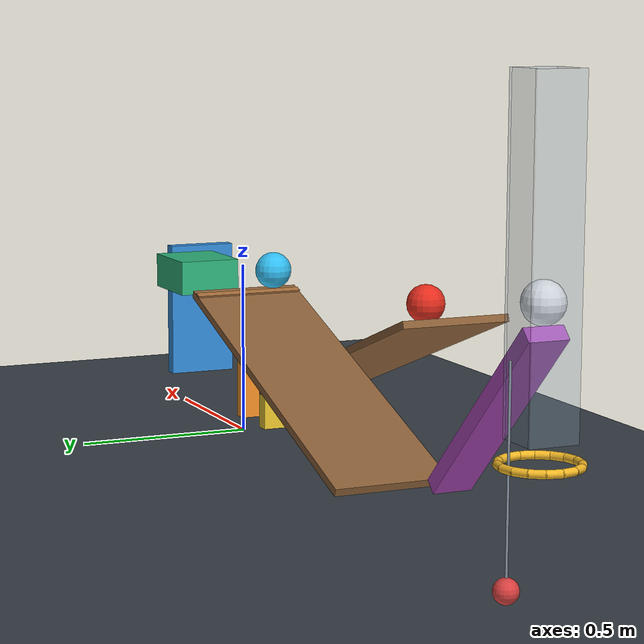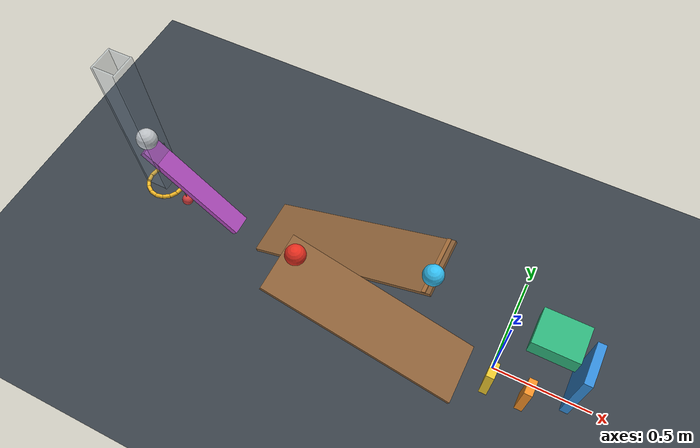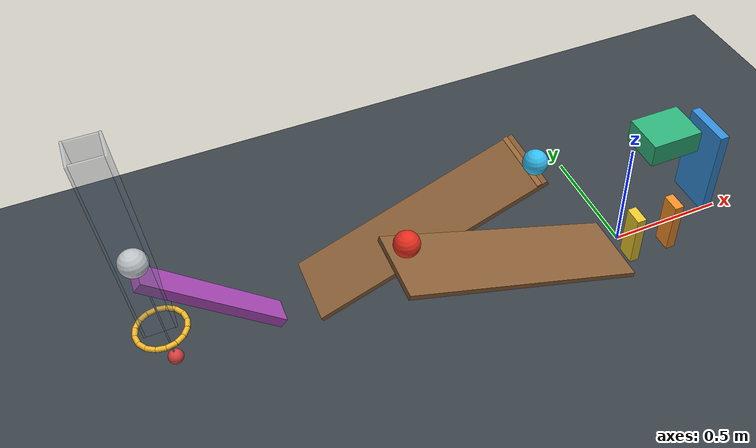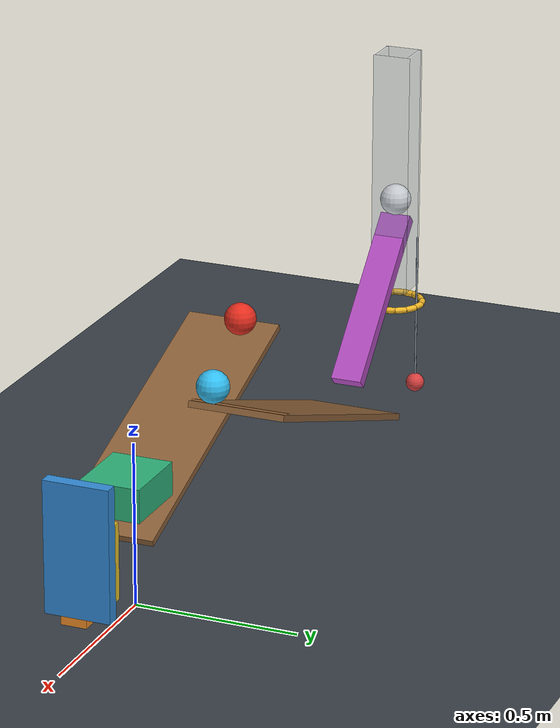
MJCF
<mujoco model="revised_passive_chain_reaction">
  <compiler angle="degree" autolimits="true" inertiafromgeom="true"/>
  <option timestep="0.002" gravity="0 0 -9.81" integrator="implicitfast" solver="Newton" iterations="100" tolerance="1e-10"/>
  <size njmax="3000" nconmax="500"/>

  <visual>
    <headlight ambient="0.45 0.45 0.45" diffuse="0.75 0.75 0.75" specular="0.15 0.15 0.15"/>
    <global azimuth="130" elevation="-20"/>
  </visual>

  <worldbody>
    <light name="overhead_light" pos="-0.8 -1.5 3" dir="0.1 0.3 -1" directional="true"/>
    <camera name="overview" pos="-3.4 -4.2 2.6" xyaxes="0.85 -0.53 0 0.24 0.38 0.89"/>
    <geom name="floor" type="plane" size="5 4 0.1" friction="0.70 0.005 0.004" condim="6" solref="0.008 0.6901" solimp="0.95 0.99 0.001" rgba="0.22 0.25 0.28 1"/>

    <!-- Ramp1's low top-surface edge is at x = -0.12, z = 0.15. -->
    <body name="ramp1" pos="-0.593266511 -0.15 0.311613145" quat="0.984807753 0 0.173648178 0">
      <geom name="ramp1_surface" type="box" size="0.50 0.15 0.01" friction="0.70 0.005 0.004" condim="6" solref="0.008 0.6901" solimp="0.95 0.99 0.001" rgba="0.55 0.38 0.22 1"/>
    </body>

    <body name="ball1" pos="-0.990908518 -0.10 0.520193766">
      <freejoint name="ball1_free"/>
      <geom name="ball1_sphere" type="sphere" size="0.05" mass="0.20" friction="0.70 0.005 0.004" condim="6" solref="0.008 0.6901" solimp="0.95 0.99 0.001" rgba="0.90 0.18 0.12 1"/>
    </body>

    <!-- Domino1's upstream face is 0.10 m beyond ramp1's exit. -->
    <body name="domino1" pos="0 -0.10 0.12">
      <freejoint name="domino1_free"/>
      <geom name="domino1_box" type="box" size="0.02 0.04 0.12" mass="0.25" friction="0.70 0.005 0.004" condim="3" solref="0.008 0.6901" solimp="0.95 0.99 0.001" rgba="0.92 0.78 0.18 1"/>
    </body>

    <body name="domino2" pos="0.18 -0.10 0.12">
      <freejoint name="domino2_free"/>
      <geom name="domino2_box" type="box" size="0.02 0.04 0.12" mass="0.25" friction="0.70 0.005 0.004" condim="3" solref="0.008 0.6901" solimp="0.95 0.99 0.001" rgba="0.95 0.56 0.15 1"/>
    </body>

    <!-- The panel initially spans z = 0.12 to 0.52.
         Domino2 strikes below the hinge, initiating the gravity-assisted swing.
         Its upper portion sweeps left into the elevated cart. -->
    <body name="flap1" pos="0.36 0 0.22">
      <joint name="flap1_hinge" type="hinge" axis="0 -1 0" range="0 65" damping="0.04" frictionloss="0" solreflimit="0.004 1" solimplimit="0.999 0.9999 0.0001"/>
      <geom name="flap1_panel" type="box" pos="0 0 0.10" size="0.02 0.10 0.20" mass="0.30" friction="0.70 0.005 0.004" condim="3" solref="0.008 0.6901" solimp="0.95 0.99 0.001" rgba="0.20 0.55 0.85 1"/>
    </body>

    <!-- Nominal first ball2 contact occurs after 0.45 m of travel.
         Another 0.015 m is available to push it over the retaining lip. -->
    <body name="cart1" pos="0.20 0.07 0.455">
      <joint name="cart1_slide" type="slide" axis="-1 0 0" range="0 0.465" damping="0.20" frictionloss="0" solreflimit="0.004 1" solimplimit="0.999 0.9999 0.0001"/>
      <geom name="cart1_box" type="box" size="0.11 0.09 0.05" mass="0.50" friction="0.70 0.005 0.004" condim="3" solref="0.008 0.6901" solimp="0.95 0.99 0.001" rgba="0.18 0.70 0.48 1"/>
    </body>

    <!-- Ramp2 descends toward negative x and ends at z = 0.15.
         The 5 mm lip provides a passive starting pocket for ball2. -->
    <body name="ramp2" pos="-0.845981101 0.15 0.311613145" quat="0.984807753 0 -0.173648178 0">
      <geom name="ramp2_surface" type="box" size="0.50 0.15 0.01" friction="0.70 0.005 0.004" condim="6" solref="0.008 0.6901" solimp="0.95 0.99 0.001" rgba="0.55 0.38 0.22 1"/>
      <geom name="ramp2_start_lip" type="box" pos="0.468205505 0 0.0125" size="0.01 0.15 0.0025" friction="0.70 0.005 0.004" condim="6" solref="0.008 0.6901" solimp="0.95 0.99 0.001" rgba="0.65 0.43 0.23 1"/>
    </body>

    <body name="ball2" pos="-0.396655000 0.07 0.539004774">
      <freejoint name="ball2_free"/>
      <geom name="ball2_sphere" type="sphere" size="0.05" mass="0.20" friction="0.70 0.005 0.004" condim="6" solref="0.008 0.6901" solimp="0.95 0.99 0.001" rgba="0.20 0.75 0.95 1"/>
    </body>

    <body name="lever1" pos="-1.665521783 0.07 0.382132034" quat="0 0.382683432 0 0.923879533">
      <joint name="lever1_hinge" type="hinge" axis="0 -1 0" range="0 45" damping="0.04" frictionloss="0" stiffness="0.30" springref="63" solreflimit="0.004 1" solimplimit="0.999 0.9999 0.0001"/>
      <geom name="lever1_beam" type="box" size="0.30 0.05 0.02" mass="0.50" friction="0.70 0.005 0.004" condim="3" solref="0.008 0.6901" solimp="0.95 0.99 0.001" rgba="0.70 0.30 0.75 1"/>
    </body>

    <!-- Ball3 rests vertically above the lever's right top corner. -->
    <body name="ball3" pos="-1.863511682 0.07 0.658406204">
      <freejoint name="ball3_free"/>
      <geom name="ball3_sphere" type="sphere" size="0.05" mass="0.20" contype="5" conaffinity="5" friction="0.70 0.005 0.004" condim="6" solref="0.008 0.6901" solimp="0.95 0.99 0.001" rgba="0.95 0.95 0.95 1"/>
    </body>

    <!-- Ideal launch-guide collision layer: walls contact ball3 only.
         Internal clear width is 0.101 m; the lever's sweep is not obstructed. -->
    <body name="ball3_guide" pos="-1.863511682 0.07 0">
      <geom name="ball3_guide_xminus" type="box" pos="-0.0545 0 0.754203102" size="0.004 0.060 0.395796898" contype="4" conaffinity="4" friction="0.70 0.005 0.004" condim="3" solref="0.008 0.6901" solimp="0.95 0.99 0.001" rgba="0.55 0.65 0.75 0.28"/>
      <geom name="ball3_guide_xplus" type="box" pos="0.0545 0 0.754203102" size="0.004 0.060 0.395796898" contype="4" conaffinity="4" friction="0.70 0.005 0.004" condim="3" solref="0.008 0.6901" solimp="0.95 0.99 0.001" rgba="0.55 0.65 0.75 0.28"/>
      <geom name="ball3_guide_yminus" type="box" pos="0 -0.0545 0.754203102" size="0.0505 0.004 0.395796898" contype="4" conaffinity="4" friction="0.70 0.005 0.004" condim="3" solref="0.008 0.6901" solimp="0.95 0.99 0.001" rgba="0.55 0.65 0.75 0.28"/>
      <geom name="ball3_guide_yplus" type="box" pos="0 0.0545 0.754203102" size="0.0505 0.004 0.395796898" contype="4" conaffinity="4" friction="0.70 0.005 0.004" condim="3" solref="0.008 0.6901" solimp="0.95 0.99 0.001" rgba="0.55 0.65 0.75 0.28"/>
    </body>

    <!-- Ring plane is 0.35 m below ball3's initial center.
         The capsule centerline polygon has apothem 0.09 m;
         its 0.01 m tube radius leaves a 0.16 m inscribed clear diameter. -->
    <body name="ring1" pos="-1.863511682 0.07 0.308406204">
      <geom name="ring1_segment00" type="capsule" fromto="0.091763204 0 0 0.084778146 0.035116258 0" size="0.01" friction="0.70 0.005 0.004" condim="3" solref="0.008 0.6901" solimp="0.95 0.99 0.001" rgba="0.95 0.72 0.15 1"/>
      <geom name="ring1_segment01" type="capsule" fromto="0.084778146 0.035116258 0 0.064886384 0.064886384 0" size="0.01" friction="0.70 0.005 0.004" condim="3" solref="0.008 0.6901" solimp="0.95 0.99 0.001" rgba="0.95 0.72 0.15 1"/>
      <geom name="ring1_segment02" type="capsule" fromto="0.064886384 0.064886384 0 0.035116258 0.084778146 0" size="0.01" friction="0.70 0.005 0.004" condim="3" solref="0.008 0.6901" solimp="0.95 0.99 0.001" rgba="0.95 0.72 0.15 1"/>
      <geom name="ring1_segment03" type="capsule" fromto="0.035116258 0.084778146 0 0 0.091763204 0" size="0.01" friction="0.70 0.005 0.004" condim="3" solref="0.008 0.6901" solimp="0.95 0.99 0.001" rgba="0.95 0.72 0.15 1"/>
      <geom name="ring1_segment04" type="capsule" fromto="0 0.091763204 0 -0.035116258 0.084778146 0" size="0.01" friction="0.70 0.005 0.004" condim="3" solref="0.008 0.6901" solimp="0.95 0.99 0.001" rgba="0.95 0.72 0.15 1"/>
      <geom name="ring1_segment05" type="capsule" fromto="-0.035116258 0.084778146 0 -0.064886384 0.064886384 0" size="0.01" friction="0.70 0.005 0.004" condim="3" solref="0.008 0.6901" solimp="0.95 0.99 0.001" rgba="0.95 0.72 0.15 1"/>
      <geom name="ring1_segment06" type="capsule" fromto="-0.064886384 0.064886384 0 -0.084778146 0.035116258 0" size="0.01" friction="0.70 0.005 0.004" condim="3" solref="0.008 0.6901" solimp="0.95 0.99 0.001" rgba="0.95 0.72 0.15 1"/>
      <geom name="ring1_segment07" type="capsule" fromto="-0.084778146 0.035116258 0 -0.091763204 0 0" size="0.01" friction="0.70 0.005 0.004" condim="3" solref="0.008 0.6901" solimp="0.95 0.99 0.001" rgba="0.95 0.72 0.15 1"/>
      <geom name="ring1_segment08" type="capsule" fromto="-0.091763204 0 0 -0.084778146 -0.035116258 0" size="0.01" friction="0.70 0.005 0.004" condim="3" solref="0.008 0.6901" solimp="0.95 0.99 0.001" rgba="0.95 0.72 0.15 1"/>
      <geom name="ring1_segment09" type="capsule" fromto="-0.084778146 -0.035116258 0 -0.064886384 -0.064886384 0" size="0.01" friction="0.70 0.005 0.004" condim="3" solref="0.008 0.6901" solimp="0.95 0.99 0.001" rgba="0.95 0.72 0.15 1"/>
      <geom name="ring1_segment10" type="capsule" fromto="-0.064886384 -0.064886384 0 -0.035116258 -0.084778146 0" size="0.01" friction="0.70 0.005 0.004" condim="3" solref="0.008 0.6901" solimp="0.95 0.99 0.001" rgba="0.95 0.72 0.15 1"/>
      <geom name="ring1_segment11" type="capsule" fromto="-0.035116258 -0.084778146 0 0 -0.091763204 0" size="0.01" friction="0.70 0.005 0.004" condim="3" solref="0.008 0.6901" solimp="0.95 0.99 0.001" rgba="0.95 0.72 0.15 1"/>
      <geom name="ring1_segment12" type="capsule" fromto="0 -0.091763204 0 0.035116258 -0.084778146 0" size="0.01" friction="0.70 0.005 0.004" condim="3" solref="0.008 0.6901" solimp="0.95 0.99 0.001" rgba="0.95 0.72 0.15 1"/>
      <geom name="ring1_segment13" type="capsule" fromto="0.035116258 -0.084778146 0 0.064886384 -0.064886384 0" size="0.01" friction="0.70 0.005 0.004" condim="3" solref="0.008 0.6901" solimp="0.95 0.99 0.001" rgba="0.95 0.72 0.15 1"/>
      <geom name="ring1_segment14" type="capsule" fromto="0.064886384 -0.064886384 0 0.084778146 -0.035116258 0" size="0.01" friction="0.70 0.005 0.004" condim="3" solref="0.008 0.6901" solimp="0.95 0.99 0.001" rgba="0.95 0.72 0.15 1"/>
      <geom name="ring1_segment15" type="capsule" fromto="0.084778146 -0.035116258 0 0.091763204 0 0" size="0.01" friction="0.70 0.005 0.004" condim="3" solref="0.008 0.6901" solimp="0.95 0.99 0.001" rgba="0.95 0.72 0.15 1"/>
    </body>

    <body name="pendulum1" pos="-1.863511682 0.147 0.536703670">
      <joint name="pendulum1_hinge" type="hinge" axis="1 0 0" damping="0.04" frictionloss="0"/>
      <geom name="pendulum1_rod" type="capsule" fromto="0 0 0 0 0 -0.50" size="0.003" mass="0.015" friction="0.70 0.005 0.004" condim="3" solref="0.008 0.6901" solimp="0.95 0.99 0.001" rgba="0.50 0.55 0.60 1"/>
      <geom name="pendulum1_bob" type="sphere" pos="0 0 -0.50" size="0.03" mass="0.335" friction="0.70 0.005 0.004" condim="3" solref="0.008 0.6901" solimp="0.95 0.99 0.001" rgba="0.85 0.25 0.25 1"/>
    </body>
  </worldbody>

  <keyframe>
    <key name="start"/>
  </keyframe>
</mujoco>
